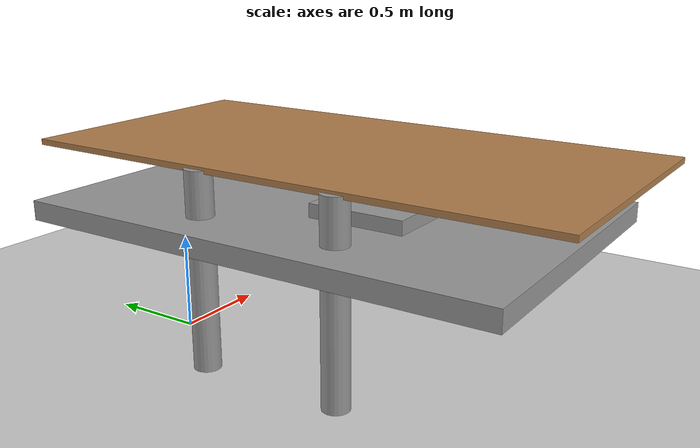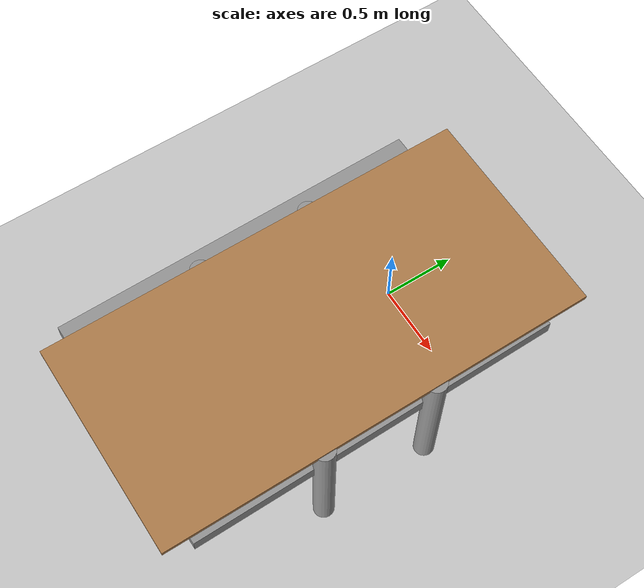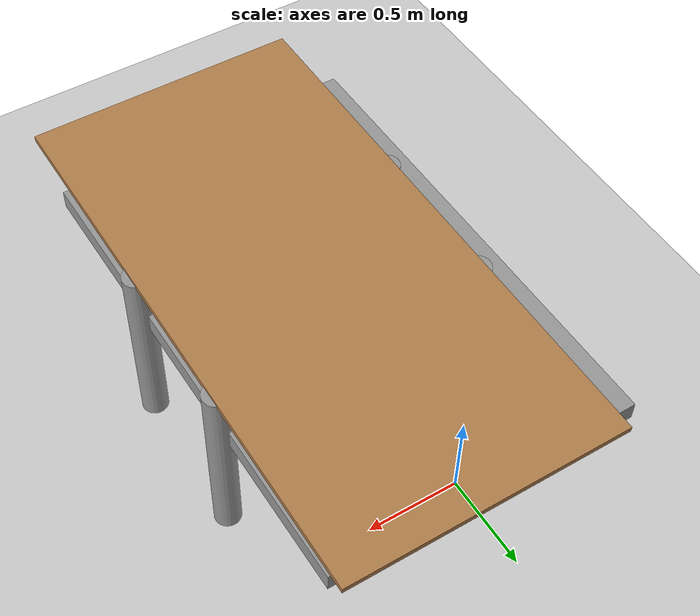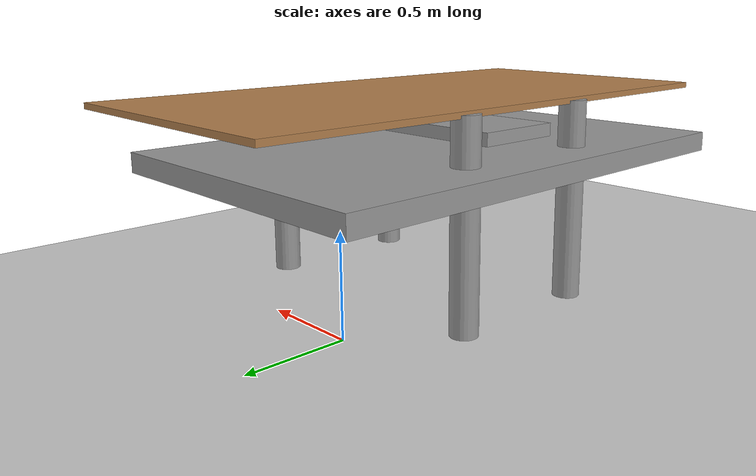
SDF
<sdf version="1.7">
 <world name="default">
  <light name="sun" type="directional">
   <pose>0 0 10 0 -0 0</pose>
   <diffuse>0.8 0.8 0.8 1</diffuse>
   <specular>0.2 0.2 0.2 1</specular>
   <attenuation>
    <range>1000</range>
    <constant>0.9</constant>
    <linear>0.01</linear>
    <quadratic>0.001</quadratic>
   </attenuation>
   <direction>-0.5 0.1 -0.9</direction>
   <spot><inner_angle>0</inner_angle><outer_angle>0</outer_angle><falloff>0</falloff></spot>
  </light>
  <model name="ground_plane">
   <static>1</static>
   <link name="link">
    <collision name="collision">
     <geometry><plane><normal>0 0 1</normal><size>100 100</size></plane></geometry>
     <surface><friction><ode><mu>100</mu><mu2>50</mu2></ode></friction></surface>
    </collision>
    <visual name="visual">
     <cast_shadows>0</cast_shadows>
     <geometry><plane><normal>0 0 1</normal><size>100 100</size></plane></geometry>
     <material>
      <script><uri>file://media/materials/scripts/gazebo.material</uri><name>Gazebo/Grey</name></script>
     </material>
    </visual>
   </link>
  </model>
  <gravity>0 0 -9.8</gravity>
  <magnetic_field>6e-06 2.3e-05 -4.2e-05</magnetic_field>
  <atmosphere type="adiabatic"/>
  <physics type="ode">
   <max_step_size>0.001</max_step_size>
   <real_time_factor>1</real_time_factor>
   <real_time_update_rate>1000</real_time_update_rate>
  </physics>
  <scene><ambient>0.4 0.4 0.4 1</ambient><background>0.7 0.7 0.7 1</background><shadows>1</shadows></scene>
  <spherical_coordinates>
   <surface_model>EARTH_WGS84</surface_model>
   <latitude_deg>0</latitude_deg>
   <longitude_deg>0</longitude_deg>
   <elevation>0</elevation>
   <heading_deg>0</heading_deg>
  </spherical_coordinates>
  <model name="almohada">
   <link name="link">
    <inertial>
     <mass>1</mass>
     <inertia>
      <ixx>0.166667</ixx>
      <ixy>0</ixy>
      <ixz>0</ixz>
      <iyy>0.166667</iyy>
      <iyz>0</iyz>
      <izz>0.166667</izz>
     </inertia>
    </inertial>
    <gravity>0</gravity>
    <visual name="visual">
     <geometry><box><size>1 0.5 0.1</size></box></geometry>
     <material>
      <script><name>Gazebo/Grey</name><uri>file://media/materials/scripts/gazebo.material</uri></script>
      <shader type="pixel"><normal_map>__default__</normal_map></shader>
      <ambient>1 1 1 1</ambient>
      <diffuse>1 1 1 1</diffuse>
      <specular>0.01 0.01 0.01 1</specular>
      <emissive>0 0 0 1</emissive>
     </material>
     <pose>0.1 -1 0.64 0 -0 0</pose>
    </visual>
    <collision name="collision">
     <geometry><box><size>0 0 0</size></box></geometry>
     <surface>
      <friction>
       <ode><mu>1</mu><mu2>1</mu2><fdir1>0 0 0</fdir1><slip1>0</slip1><slip2>0</slip2></ode>
       <torsional>
        <coefficient>1</coefficient>
        <patch_radius>0</patch_radius>
        <surface_radius>0</surface_radius>
        <use_patch_radius>1</use_patch_radius>
        <ode><slip>0</slip></ode>
       </torsional>
      </friction>
      <bounce><restitution_coefficient>0</restitution_coefficient><threshold>1e+06</threshold></bounce>
      <contact>
       <collide_without_contact>0</collide_without_contact>
       <collide_without_contact_bitmask>1</collide_without_contact_bitmask>
       <collide_bitmask>1</collide_bitmask>
       <ode>
        <soft_cfm>0</soft_cfm>
        <soft_erp>0.2</soft_erp>
        <kp>1e+13</kp>
        <kd>1</kd>
        <max_vel>0.01</max_vel>
        <min_depth>0</min_depth>
       </ode>
       <bullet>
        <split_impulse>1</split_impulse>
        <split_impulse_penetration_threshold>-0.01</split_impulse_penetration_threshold>
        <soft_cfm>0</soft_cfm>
        <soft_erp>0.2</soft_erp>
        <kp>1e+13</kp>
        <kd>1</kd>
       </bullet>
      </contact>
     </surface>
    </collision>
   </link>
   <static>0</static>
   <pose>0.329449 -0.110549 0.15 0 -0 -4e-06</pose>
  </model>
  <model name="colchon">
   <link name="link">
    <inertial>
     <mass>1</mass>
     <inertia>
      <ixx>0.166667</ixx>
      <ixy>0</ixy>
      <ixz>0</ixz>
      <iyy>0.166667</iyy>
      <iyz>0</iyz>
      <izz>0.166667</izz>
     </inertia>
    </inertial>
    <visual name="visual">
     <geometry><box><size>1.6 2.5 0.1</size></box></geometry>
     <material>
      <script><name>Gazebo/Grey</name><uri>file://media/materials/scripts/gazebo.material</uri></script>
      <shader type="pixel"><normal_map>__default__</normal_map></shader>
      <ambient>0.3 0.3 0.3 1</ambient>
      <diffuse>1 1 1 1</diffuse>
      <specular>0.01 0.01 0.01 1</specular>
      <emissive>0 0 0 1</emissive>
     </material>
     <pose>-0.17 0 0.57 0 -0 0</pose>
    </visual>
    <collision name="collision">
     <geometry><box><size>0 0 0</size></box></geometry>
     <surface>
      <friction>
       <ode><mu>1</mu><mu2>1</mu2><fdir1>0 0 0</fdir1><slip1>0</slip1><slip2>0</slip2></ode>
       <torsional>
        <coefficient>1</coefficient>
        <patch_radius>0</patch_radius>
        <surface_radius>0</surface_radius>
        <use_patch_radius>1</use_patch_radius>
        <ode><slip>0</slip></ode>
       </torsional>
      </friction>
      <bounce><restitution_coefficient>0</restitution_coefficient><threshold>1e+06</threshold></bounce>
      <contact>
       <collide_without_contact>0</collide_without_contact>
       <collide_without_contact_bitmask>1</collide_without_contact_bitmask>
       <collide_bitmask>1</collide_bitmask>
       <ode>
        <soft_cfm>0</soft_cfm>
        <soft_erp>0.2</soft_erp>
        <kp>1e+13</kp>
        <kd>1</kd>
        <max_vel>0.01</max_vel>
        <min_depth>0</min_depth>
       </ode>
       <bullet>
        <split_impulse>1</split_impulse>
        <split_impulse_penetration_threshold>-0.01</split_impulse_penetration_threshold>
        <soft_cfm>0</soft_cfm>
        <soft_erp>0.2</soft_erp>
        <kp>1e+13</kp>
        <kd>1</kd>
       </bullet>
      </contact>
     </surface>
    </collision>
   </link>
   <static>0</static>
   <pose>0.389449 -0.807472 0.15 0 -0 0.007429</pose>
  </model>
  <model name="cama">
   <link name="link">
    <inertial>
     <inertia><ixx>0</ixx><ixy>0</ixy><ixz>0</ixz><iyy>0</iyy><iyz>0</iyz><izz>0</izz></inertia>
     <mass>0</mass>
    </inertial>
    <visual name="back_left_leg">
     <pose>-0.68 0.38 0.5 0 -0 0</pose>
     <geometry><cylinder><radius>0.0677199</radius><length>1</length></cylinder></geometry>
     <material>
      <script><uri>file://media/materials/scripts/gazebo.material</uri><name>Gazebo/Grey</name></script>
      <shader type="pixel"/>
     </material>
    </visual>
    <visual name="back_right_leg">
     <pose>-0.68 -0.38 0.5 0 -0 0</pose>
     <geometry><cylinder><radius>0.0677199</radius><length>1</length></cylinder></geometry>
     <material>
      <script><uri>file://media/materials/scripts/gazebo.material</uri><name>Gazebo/Grey</name></script>
      <shader type="pixel"/>
     </material>
    </visual>
    <visual name="visual1">
     <pose>0 0 1 0 -0 0</pose>
     <geometry><box><size>1.41684 2.86779 0.03</size></box></geometry>
     <material>
      <script><uri>file://media/materials/scripts/gazebo.material</uri><name>Gazebo/Wood</name></script>
      <shader type="pixel"/>
     </material>
    </visual>
    <visual name="front_right_leg">
     <pose>0.68 -0.38 0.5 0 -0 0</pose>
     <geometry><cylinder><radius>0.0677199</radius><length>1</length></cylinder></geometry>
     <material>
      <script><uri>file://media/materials/scripts/gazebo.material</uri><name>Gazebo/Grey</name></script>
      <shader type="pixel"/>
     </material>
    </visual>
    <visual name="front_left_leg">
     <pose>0.68 0.38 0.5 0 -0 0</pose>
     <geometry><cylinder><radius>0.0677199</radius><length>1</length></cylinder></geometry>
     <material>
      <script><uri>file://media/materials/scripts/gazebo.material</uri><name>Gazebo/Grey</name></script>
      <shader type="pixel"/>
     </material>
    </visual>
    <collision name="front_right_leg">
     <pose>0.68 -0.38 0.5 0 -0 0</pose>
     <geometry><cylinder><radius>0.06772</radius><length>1</length></cylinder></geometry>
     <surface>
      <friction>
       <ode><mu>1</mu><mu2>1</mu2><fdir1>0 0 0</fdir1><slip1>0</slip1><slip2>0</slip2></ode>
       <torsional>
        <coefficient>1</coefficient>
        <patch_radius>0</patch_radius>
        <surface_radius>0</surface_radius>
        <use_patch_radius>1</use_patch_radius>
        <ode><slip>0</slip></ode>
       </torsional>
      </friction>
      <bounce><restitution_coefficient>0</restitution_coefficient><threshold>1e+06</threshold></bounce>
      <contact>
       <collide_without_contact>0</collide_without_contact>
       <collide_without_contact_bitmask>1</collide_without_contact_bitmask>
       <collide_bitmask>1</collide_bitmask>
       <ode>
        <soft_cfm>0</soft_cfm>
        <soft_erp>0.2</soft_erp>
        <kp>1e+13</kp>
        <kd>1</kd>
        <max_vel>0.01</max_vel>
        <min_depth>0</min_depth>
       </ode>
       <bullet>
        <split_impulse>1</split_impulse>
        <split_impulse_penetration_threshold>-0.01</split_impulse_penetration_threshold>
        <soft_cfm>0</soft_cfm>
        <soft_erp>0.2</soft_erp>
        <kp>1e+13</kp>
        <kd>1</kd>
       </bullet>
      </contact>
     </surface>
    </collision>
    <collision name="front_left_leg">
     <pose>0.68 0.38 0.5 0 -0 0</pose>
     <geometry><cylinder><radius>0.06772</radius><length>1</length></cylinder></geometry>
     <surface>
      <friction>
       <ode><mu>1</mu><mu2>1</mu2><fdir1>0 0 0</fdir1><slip1>0</slip1><slip2>0</slip2></ode>
       <torsional>
        <coefficient>1</coefficient>
        <patch_radius>0</patch_radius>
        <surface_radius>0</surface_radius>
        <use_patch_radius>1</use_patch_radius>
        <ode><slip>0</slip></ode>
       </torsional>
      </friction>
      <bounce><restitution_coefficient>0</restitution_coefficient><threshold>1e+06</threshold></bounce>
      <contact>
       <collide_without_contact>0</collide_without_contact>
       <collide_without_contact_bitmask>1</collide_without_contact_bitmask>
       <collide_bitmask>1</collide_bitmask>
       <ode>
        <soft_cfm>0</soft_cfm>
        <soft_erp>0.2</soft_erp>
        <kp>1e+13</kp>
        <kd>1</kd>
        <max_vel>0.01</max_vel>
        <min_depth>0</min_depth>
       </ode>
       <bullet>
        <split_impulse>1</split_impulse>
        <split_impulse_penetration_threshold>-0.01</split_impulse_penetration_threshold>
        <soft_cfm>0</soft_cfm>
        <soft_erp>0.2</soft_erp>
        <kp>1e+13</kp>
        <kd>1</kd>
       </bullet>
      </contact>
     </surface>
    </collision>
    <collision name="back_left_leg">
     <pose>-0.68 0.38 0.5 0 -0 0</pose>
     <geometry><cylinder><radius>0.06772</radius><length>1</length></cylinder></geometry>
     <surface>
      <friction>
       <ode><mu>1</mu><mu2>1</mu2><fdir1>0 0 0</fdir1><slip1>0</slip1><slip2>0</slip2></ode>
       <torsional>
        <coefficient>1</coefficient>
        <patch_radius>0</patch_radius>
        <surface_radius>0</surface_radius>
        <use_patch_radius>1</use_patch_radius>
        <ode><slip>0</slip></ode>
       </torsional>
      </friction>
      <bounce><restitution_coefficient>0</restitution_coefficient><threshold>1e+06</threshold></bounce>
      <contact>
       <collide_without_contact>0</collide_without_contact>
       <collide_without_contact_bitmask>1</collide_without_contact_bitmask>
       <collide_bitmask>1</collide_bitmask>
       <ode>
        <soft_cfm>0</soft_cfm>
        <soft_erp>0.2</soft_erp>
        <kp>1e+13</kp>
        <kd>1</kd>
        <max_vel>0.01</max_vel>
        <min_depth>0</min_depth>
       </ode>
       <bullet>
        <split_impulse>1</split_impulse>
        <split_impulse_penetration_threshold>-0.01</split_impulse_penetration_threshold>
        <soft_cfm>0</soft_cfm>
        <soft_erp>0.2</soft_erp>
        <kp>1e+13</kp>
        <kd>1</kd>
       </bullet>
      </contact>
     </surface>
    </collision>
    <collision name="surface">
     <pose>0 0 1 0 -0 0</pose>
     <geometry><box><size>1.41684 2.86779 0.03</size></box></geometry>
     <surface>
      <friction>
       <ode><mu>0.6</mu><mu2>0.6</mu2><fdir1>0 0 0</fdir1><slip1>0</slip1><slip2>0</slip2></ode>
       <torsional>
        <coefficient>1</coefficient>
        <patch_radius>0</patch_radius>
        <surface_radius>0</surface_radius>
        <use_patch_radius>1</use_patch_radius>
        <ode><slip>0</slip></ode>
       </torsional>
      </friction>
      <bounce><restitution_coefficient>0</restitution_coefficient><threshold>1e+06</threshold></bounce>
      <contact>
       <collide_without_contact>0</collide_without_contact>
       <collide_without_contact_bitmask>1</collide_without_contact_bitmask>
       <collide_bitmask>1</collide_bitmask>
       <ode>
        <soft_cfm>0</soft_cfm>
        <soft_erp>0.2</soft_erp>
        <kp>1e+13</kp>
        <kd>1</kd>
        <max_vel>0.01</max_vel>
        <min_depth>0</min_depth>
       </ode>
       <bullet>
        <split_impulse>1</split_impulse>
        <split_impulse_penetration_threshold>-0.01</split_impulse_penetration_threshold>
        <soft_cfm>0</soft_cfm>
        <soft_erp>0.2</soft_erp>
        <kp>1e+13</kp>
        <kd>1</kd>
       </bullet>
      </contact>
     </surface>
    </collision>
    <collision name="back_right_leg">
     <pose>-0.68 -0.38 0.5 0 -0 0</pose>
     <geometry><cylinder><radius>0.06772</radius><length>1</length></cylinder></geometry>
     <surface>
      <friction>
       <ode><mu>1</mu><mu2>1</mu2><fdir1>0 0 0</fdir1><slip1>0</slip1><slip2>0</slip2></ode>
       <torsional>
        <coefficient>1</coefficient>
        <patch_radius>0</patch_radius>
        <surface_radius>0</surface_radius>
        <use_patch_radius>1</use_patch_radius>
        <ode><slip>0</slip></ode>
       </torsional>
      </friction>
      <bounce><restitution_coefficient>0</restitution_coefficient><threshold>1e+06</threshold></bounce>
      <contact>
       <collide_without_contact>0</collide_without_contact>
       <collide_without_contact_bitmask>1</collide_without_contact_bitmask>
       <collide_bitmask>1</collide_bitmask>
       <ode>
        <soft_cfm>0</soft_cfm>
        <soft_erp>0.2</soft_erp>
        <kp>1e+13</kp>
        <kd>1</kd>
        <max_vel>0.01</max_vel>
        <min_depth>0</min_depth>
       </ode>
       <bullet>
        <split_impulse>1</split_impulse>
        <split_impulse_penetration_threshold>-0.01</split_impulse_penetration_threshold>
        <soft_cfm>0</soft_cfm>
        <soft_erp>0.2</soft_erp>
        <kp>1e+13</kp>
        <kd>1</kd>
       </bullet>
      </contact>
     </surface>
    </collision>
   </link>
   <static>1</static>
   <pose>0.349449 -0.807472 0 0 -0 0</pose>
  </model>
 </world>
</sdf>
